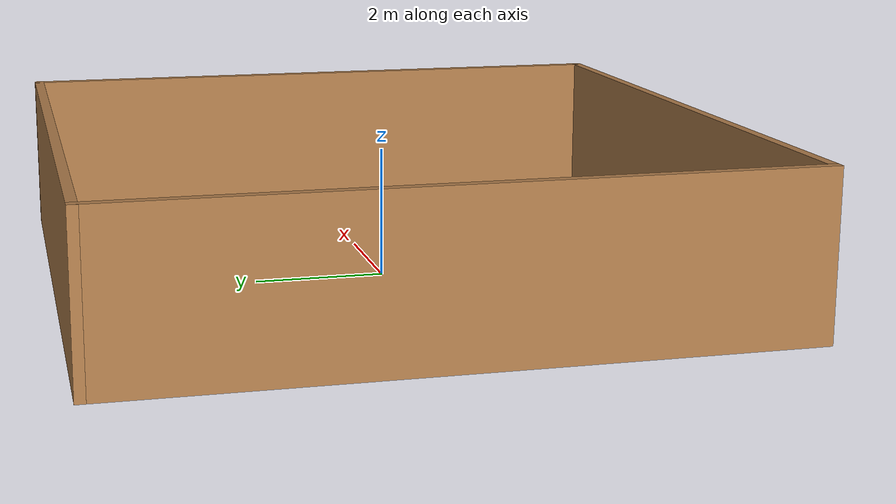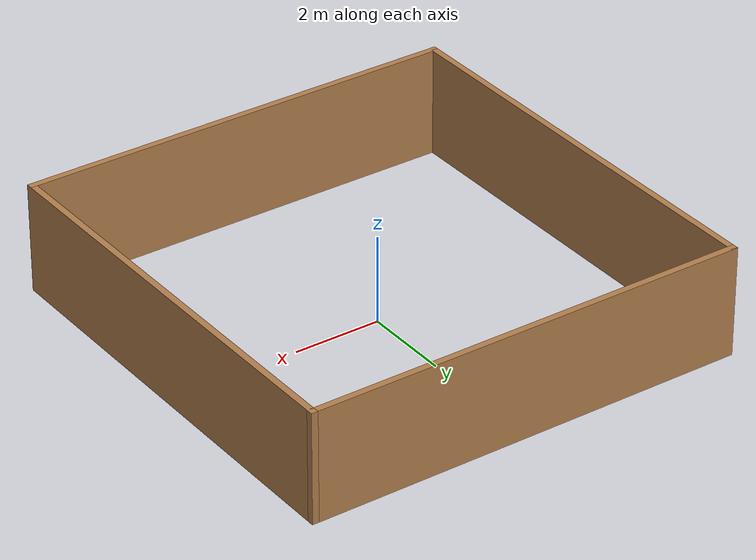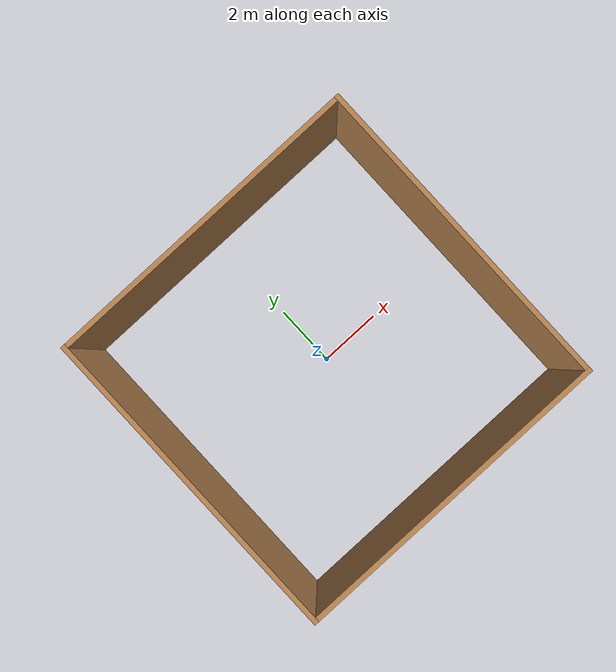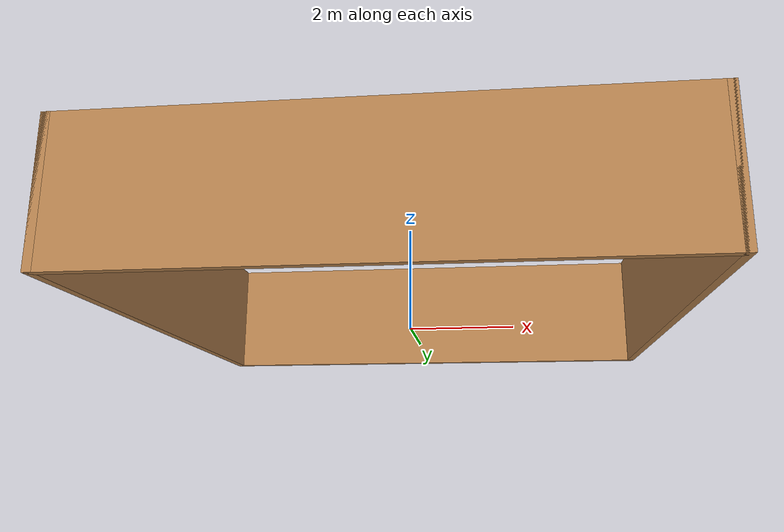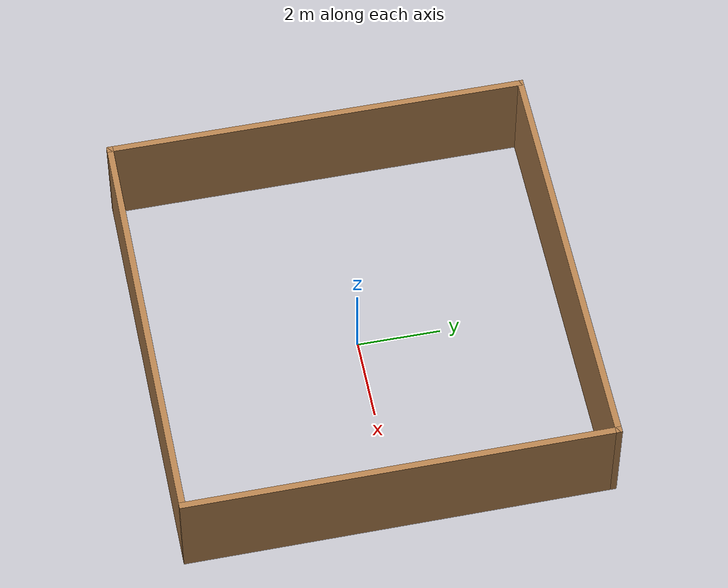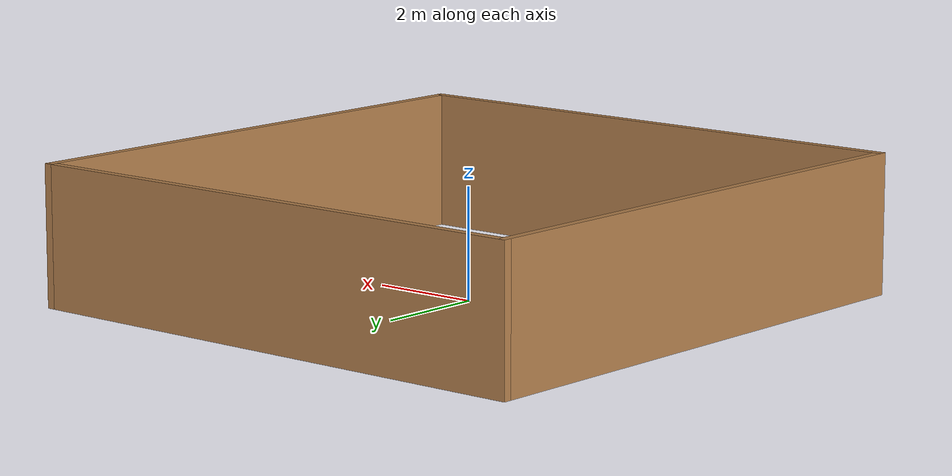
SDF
<?xml version='1.0'?>
<sdf version='1.6'>
  <model name='model5cm'>
    <pose frame=''>0 0 0 0 -0 0</pose>
    <link name='Wall_5'>
      <collision name='Wall_5_Collision'>
        <geometry>
          <box>
            <size>10.15 0.15 2.5</size>
          </box>
        </geometry>
        <pose frame=''>0 0 1.25 0 -0 0</pose>
      </collision>
      <visual name='Wall_5_Visual'>
        <pose frame=''>0 0 1.25 0 -0 0</pose>
        <geometry>
          <box>
            <size>10.15 0.15 2.5</size>
          </box>
        </geometry>
        <material>
          <script>
            <uri>file://media/materials/scripts/gazebo.material</uri>
            <name>Gazebo/Wood</name>
          </script>
          <ambient>1 1 1 1</ambient>
        </material>
        <meta>
          <layer>0</layer>
        </meta>
      </visual>
      <pose frame=''>-5 0 0 0 -0 -1.5708</pose>
    </link>
    <link name='Wall_6'>
      <collision name='Wall_6_Collision'>
        <geometry>
          <box>
            <size>10.15 0.15 2.5</size>
          </box>
        </geometry>
        <pose frame=''>0 0 1.25 0 -0 0</pose>
      </collision>
      <visual name='Wall_6_Visual'>
        <pose frame=''>0 0 1.25 0 -0 0</pose>
        <geometry>
          <box>
            <size>10.15 0.15 2.5</size>
          </box>
        </geometry>
        <material>
          <script>
            <uri>file://media/materials/scripts/gazebo.material</uri>
            <name>Gazebo/Wood</name>
          </script>
          <ambient>1 1 1 1</ambient>
        </material>
        <meta>
          <layer>0</layer>
        </meta>
      </visual>
      <pose frame=''>0 -5 0 0 -0 0</pose>
    </link>
    <link name='Wall_7'>
      <collision name='Wall_7_Collision'>
        <geometry>
          <box>
            <size>10.15 0.15 2.5</size>
          </box>
        </geometry>
        <pose frame=''>0 0 1.25 0 -0 0</pose>
      </collision>
      <visual name='Wall_7_Visual'>
        <pose frame=''>0 0 1.25 0 -0 0</pose>
        <geometry>
          <box>
            <size>10.15 0.15 2.5</size>
          </box>
        </geometry>
        <material>
          <script>
            <uri>file://media/materials/scripts/gazebo.material</uri>
            <name>Gazebo/Wood</name>
          </script>
          <ambient>1 1 1 1</ambient>
        </material>
        <meta>
          <layer>0</layer>
        </meta>
      </visual>
      <pose frame=''>5 0 0 0 -0 1.5708</pose>
    </link>
    <link name='Wall_8'>
      <collision name='Wall_8_Collision'>
        <geometry>
          <box>
            <size>10.15 0.15 2.5</size>
          </box>
        </geometry>
        <pose frame=''>0 0 1.25 0 -0 0</pose>
      </collision>
      <visual name='Wall_8_Visual'>
        <pose frame=''>0 0 1.25 0 -0 0</pose>
        <geometry>
          <box>
            <size>10.15 0.15 2.5</size>
          </box>
        </geometry>
        <material>
          <script>
            <uri>file://media/materials/scripts/gazebo.material</uri>
            <name>Gazebo/Wood</name>
          </script>
          <ambient>1 1 1 1</ambient>
        </material>
        <meta>
          <layer>0</layer>
        </meta>
      </visual>
      <pose frame=''>0 5 0 0 -0 3.14159</pose>
    </link>
    <static>1</static>
  </model>
</sdf>
